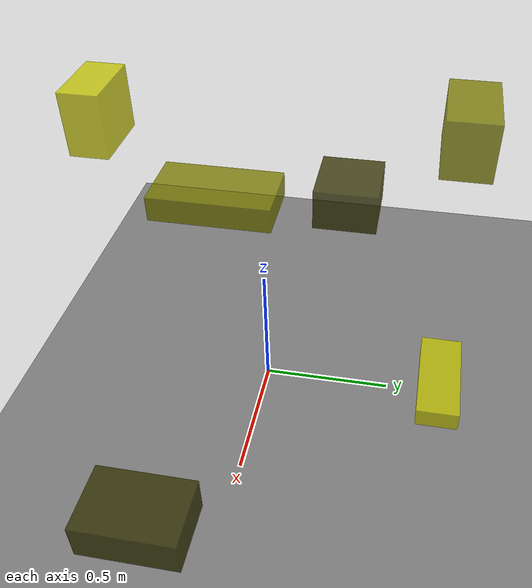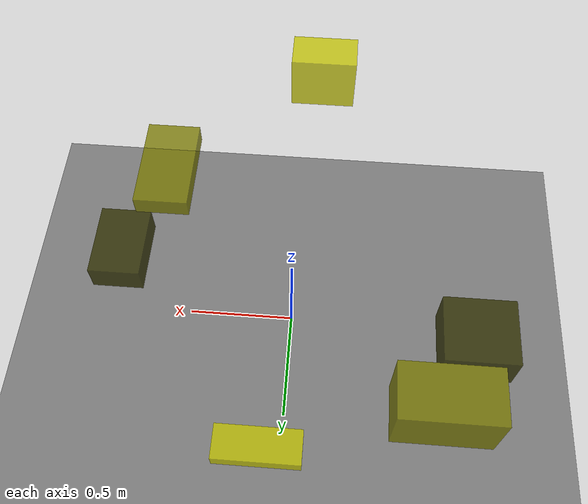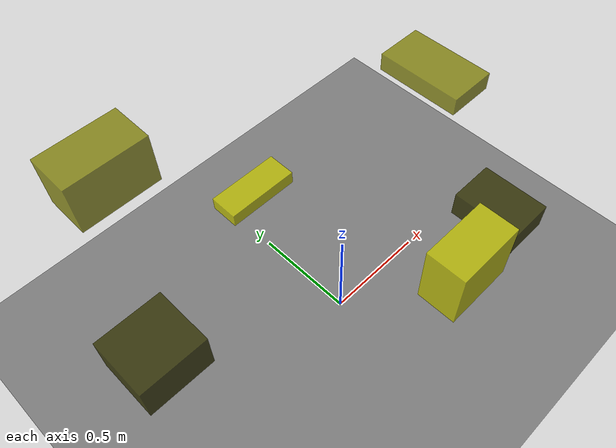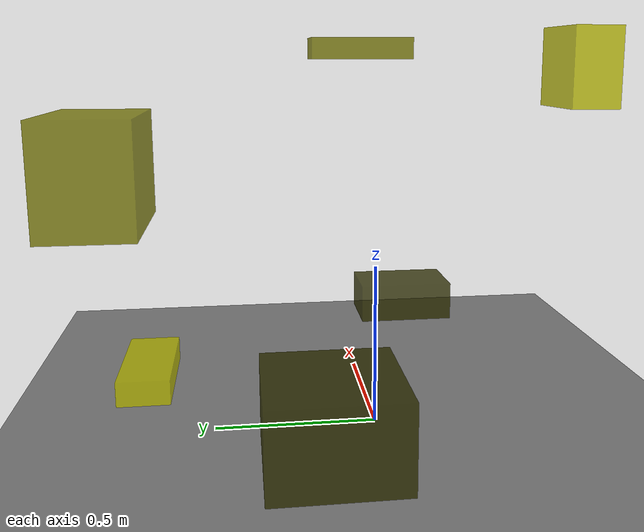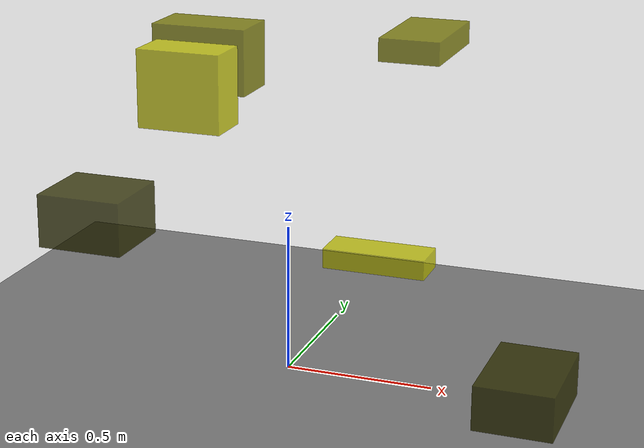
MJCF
<?xml version="1.0"?>
<mujoco model="obstacle_scene">
  <compiler angle="radian" coordinate="local"/>
  <option timestep="0.001" gravity="0 0 -9.81"/>

  <asset>
    <material name="obstacle_mat" rgba="0.8 0.8 0.0 0.8"/>
    <material name="ground_mat" rgba="0.5 0.5 0.5 1"/>
  </asset>

  <worldbody>
    <!-- Ground plane -->
    <geom name="ground" type="plane" size="3 3 0.1" material="ground_mat"/>

    <!-- Obstacles -->
    <body name="obstacle_0" pos="-0.823742 0.223288 0.381926">
      <geom name="obs_0" type="box" size="0.159672 0.148421 0.098652" rgba="0.2 0.2 0.0 0.8"/>
    </body>
    <body name="obstacle_1" pos="0.452283 -0.012323 1.162555">
      <geom name="obs_1" type="box" size="0.095315 0.171521 0.035949" rgba="0.5 0.5 0.0 0.8"/>
    </body>
    <body name="obstacle_2" pos="0.095165 0.701788 0.168038">
      <geom name="obs_2" type="box" size="0.195957 0.078233 0.037787" rgba="0.8 0.8 0.0 0.8"/>
    </body>
    <body name="obstacle_3" pos="0.866581 -0.248163 0.157174">
      <geom name="obs_3" type="box" size="0.124195 0.180355 0.072114" rgba="0.2 0.2 0.0 0.8"/>
    </body>
    <body name="obstacle_4" pos="-0.588047 0.713120 0.885682">
      <geom name="obs_4" type="box" size="0.183376 0.103266 0.124284" rgba="0.5 0.5 0.0 0.8"/>
    </body>
    <body name="obstacle_5" pos="-0.087108 -0.589930 1.103526">
      <geom name="obs_5" type="box" size="0.126895 0.070700 0.116082" rgba="0.8 0.8 0.0 0.8"/>
    </body>
  </worldbody>
</mujoco>
